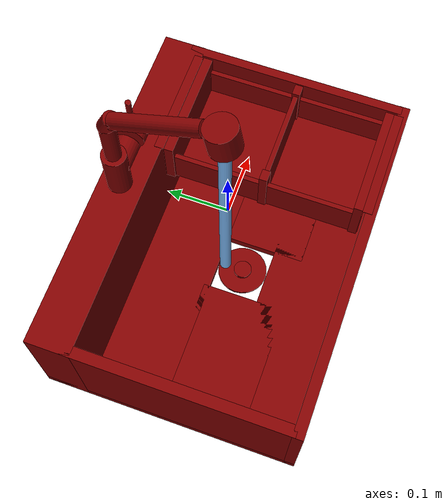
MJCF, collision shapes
<mujoco model="model">
  <compiler angle="radian"/>
  <asset>
    <mesh file="visuals/handle.obj" name="handle_vis"/>
    <mesh file="visuals/Body001.obj" name="Body001_vis"/>
    <mesh file="visuals/Funnel001.obj" name="Funnel001_vis"/>
    <mesh file="visuals/Shelf001.obj" name="Shelf001_vis"/>
    <mesh file="visuals/spout.obj" name="spout_vis"/>
    <texture file="visuals/T_BC001.png" name="Body001_material" type="2d"/>
    <material name="Body001_material" rgba="1 1 1 1.0" texture="Body001_material" shininess="0.2512328028678894" specular="0.7"/>
    <texture file="visuals/T_BC001.png" name="handle_material" type="2d"/>
    <material name="handle_material" rgba="1 1 1 1.0" texture="handle_material" shininess="0.2512328028678894" specular="0.7"/>
    <texture file="visuals/T_BC001.png" name="Funnel001_material" type="2d"/>
    <material name="Funnel001_material" rgba="1 1 1 1.0" texture="Funnel001_material" shininess="0.2512328028678894" specular="0.7"/>
    <texture file="visuals/T_BC001.png" name="Shelf001_material" type="2d"/>
    <material name="Shelf001_material" rgba="1 1 1 1.0" texture="Shelf001_material" shininess="0.2512328028678894" specular="0.7"/>
    <texture file="visuals/T_BC001.png" name="spout_material" type="2d"/>
    <material name="spout_material" rgba="1 1 1 1.0" texture="spout_material" shininess="0.2512328028678894" specular="0.71"/>
  </asset>
  <default>
    <default class="visual">
      <geom conaffinity="0" contype="0" group="1" type="mesh"/>
    </default>
    <default class="collision">
      <geom group="0" rgba="0.5 0 0 0.5"/>
    </default>
    <default class="spawn">
      <geom group="0" rgba="1 1 1 0.5" contype="0" conaffinity="0"/>
      <site group="0" rgba="1 1 1 0.5"/>
    </default>
    <default class="region">
      <geom group="1" conaffinity="0" contype="0" rgba="0 1 0 0"/>
    </default>
  </default>
  <worldbody>
    <body>
      <body name="object">
        <geom mesh="Body001_vis" type="mesh" solimp="0.998 0.998 0.001" solref="0.001 1" density="100" friction="0.95 0.3 0.1" class="visual" material="Body001_material"/>
        <geom class="collision" type="cylinder" pos="0.002426 0.190546 0.015431" size="0.020831860601902008 0.0458267480134964" quat="1.0 0.0 0.0 0.0"/>
        <geom class="collision" type="cylinder" pos="0.027035 0.190546 0.020480" size="0.020831860601902008 0.024780360981822014" quat="0.7071068286895752 -0.0 0.7071067690849304 0.0"/>
        <geom class="collision" type="box" pos="-0.000346 -0.215834 -0.138684" size="0.30083996057510376 0.009166315197944641 0.10828779637813568" quat="1.0 0.0 0.0 0.0"/>
        <geom class="collision" type="box" pos="-0.000346 0.187236 -0.138684" size="0.30083996057510376 0.03776437044143677 0.10828779637813568" quat="1.0 0.0 0.0 0.0"/>
        <geom class="collision" type="box" pos="-0.291481 -0.019527 -0.138684" size="0.009703980758786201 0.19282034039497375 0.10828779637813568" quat="1.0 0.0 0.0 0.0"/>
        <geom class="collision" type="box" pos="0.292151 -0.019527 -0.138684" size="0.007847588509321213 0.19282034039497375 0.10828779637813568" quat="1.0 0.0 0.0 0.0"/>
        <geom class="collision" type="box" pos="-0.000346 0.121445 -0.238684" size="0.30083996057510376 0.10355537384748459 0.008287759497761726" quat="1.0 0.0 0.0 0.0"/>
        <geom class="collision" type="box" pos="-0.000346 -0.148835 -0.238684" size="0.30083996057510376 0.07616467028856277 0.008287759497761726" quat="1.0 0.0 0.0 0.0"/>
        <geom class="collision" type="box" pos="-0.175362 -0.048112 -0.238684" size="0.12582388520240784 0.07616467028856277 0.008287759497761726" quat="1.0 0.0 0.0 0.0"/>
        <geom class="collision" type="box" pos="0.175696 -0.048112 -0.238684" size="0.12348379194736481 0.07616467028856277 0.008287759497761726" quat="1.0 0.0 0.0 0.0"/>
        <body name="handle">
          <joint axis="1.0 0.0 0.0" pos="0.069800 0.190336 0.020665" limited="true" name="handle_joint_hinge_0" type="hinge" range="-0.7853981633974483 0.7853981633974483" damping="1" frictionloss="1" armature=".01" stiffness="0.05"/>
          <joint axis="0.0 1.0 0.0" pos="0.069800 0.190336 0.020665" limited="true" name="handle_joint_hinge_1" type="hinge" range="0.0 0.17453292519943295" damping="1" frictionloss="1" armature=".01" stiffness="0.05"/>
          <geom mesh="handle_vis" type="mesh" solimp="0.998 0.998 0.001" solref="0.001 1" density="100" friction="0.95 0.3 0.1" class="visual" material="handle_material"/>
          <geom class="collision" type="cylinder" pos="0.072344 0.190546 0.020648" size="0.02436080016195774 0.011946998536586761" quat="0.7071068286895752 -0.0 0.7071067690849304 0.0"/>
          <geom class="collision" type="cylinder" pos="0.073643 0.190425 0.070952" size="0.00486146192997694 0.03468066081404686" quat="1.0 0.0 0.0 0.0"/>
        </body>
        <body name="Funnel001">
          <joint axis="0.0 0.0 1.0" pos="0.000146 -0.028039 -0.232142" limited="true" name="Funnel001_joint" range="0.0 0.1" type="slide" damping="1" frictionloss="1" armature=".01" stiffness="0.05"/>
          <geom mesh="Funnel001_vis" type="mesh" solimp="0.998 0.998 0.001" solref="0.001 1" density="100" friction="0.95 0.3 0.1" class="visual" material="Funnel001_material"/>
          <geom class="collision" type="cylinder" pos="0.000288 -0.027889 -0.233877" size="0.043843142688274384 0.0017247076611965895" quat="1.0 0.0 0.0 0.0"/>
          <geom class="collision" type="cylinder" pos="0.000210 -0.028260 -0.229330" size="0.015967193990945816 0.0028173860628157854" quat="1.0 0.0 0.0 0.0"/>
        </body>
        <body name="Shelf001">
          <joint axis="0.0 0.0 1.0" pos="0.154435 -0.030295 -0.080426" limited="true" name="Shelf001_joint" range="0.0 0.1" type="slide" damping="1" frictionloss="1" armature=".01" stiffness="0.05"/>
          <geom mesh="Shelf001_vis" type="mesh" solimp="0.998 0.998 0.001" solref="0.001 1" density="100" friction="0.95 0.3 0.1" class="visual" material="Shelf001_material"/>
          <geom class="collision" type="box" pos="0.273166 -0.028750 -0.085936" size="0.004088487941771746 0.17451916635036469 0.03176761046051979" quat="1.0 0.0 0.0 0.0"/>
          <geom class="collision" type="box" pos="0.092517 -0.028750 -0.085936" size="0.004088487941771746 0.17451916635036469 0.03176761046051979" quat="1.0 0.0 0.0 0.0"/>
          <geom class="collision" type="box" pos="0.182486 -0.028750 -0.111286" size="0.08870105445384979 0.17451916635036469 0.004088497254997492" quat="1.0 0.0 0.0 0.0"/>
          <geom class="collision" type="box" pos="0.187585 -0.030764 -0.077110" size="0.09570297598838806 0.004088507499545813 0.04059391841292381" quat="1.0 0.0 0.0 0.0"/>
          <geom class="collision" type="box" pos="0.182510 -0.194551 -0.072936" size="0.09712352603673935 0.007516270503401756 0.04476821795105934" quat="1.0 0.0 0.0 0.0"/>
          <geom class="collision" type="box" pos="0.272284 -0.030730 -0.073927" size="0.009886195883154869 0.007012831978499889 0.04377679526805878" quat="1.0 0.0 0.0 0.0"/>
          <geom class="collision" type="box" pos="0.095064 -0.030730 -0.073927" size="0.009886195883154869 0.007012831978499889 0.04377679526805878" quat="1.0 0.0 0.0 0.0"/>
          <geom class="collision" type="box" pos="0.181909 0.137070 -0.072936" size="0.09772445261478424 0.008141646161675453 0.04476821795105934" quat="1.0 0.0 0.0 0.0"/>
          <geom class="collision" type="box" pos="0.181909 -0.209895 -0.028915" size="0.09772445261478424 0.008141646161675453 0.00032241115695796907" quat="1.0 0.0 0.0 0.0"/>
          <geom class="collision" type="box" pos="0.181909 0.154093 -0.028915" size="0.09772445261478424 0.008141646161675453 0.00032241115695796907" quat="1.0 0.0 0.0 0.0"/>
        </body>
        <body name="spout">
          <joint axis="0.0 0.0 1.0" pos="0.002550 0.190488 0.141073" limited="true" name="spout_joint" range="-0.7853981633974483 0.7853981633974483" type="hinge" damping="1" frictionloss="1" armature=".01" stiffness="0.05"/>
          <site type="cylinder" rgba="0.5 0.75 1 1" size="0.010260341688990593 0.21937322616577148" pos="0.002859 0.005823 -0.017777" name="water"/>
          <geom mesh="spout_vis" type="mesh" solimp="0.998 0.998 0.001" solref="0.001 1" density="100" friction="0.95 0.3 0.1" class="visual" material="spout_material"/>
          <geom class="collision" type="cylinder" pos="0.002426 0.190546 0.105313" size="0.013487700372934341 0.04282769560813904" quat="1.0 0.0 0.0 0.0"/>
          <geom class="collision" type="cylinder" pos="0.002426 0.108657 0.195385" size="0.013487700372934341 0.07807393372058868" quat="0.8297640085220337 0.5581144094467163 0.0 0.0"/>
          <geom class="collision" type="cylinder" pos="0.002426 0.186199 0.158192" size="0.013487700372934341 0.015277374535799026" quat="0.97535640001297 0.22063519060611725 0.0 0.0"/>
          <geom class="collision" type="cylinder" pos="0.002426 0.008599 0.218085" size="0.02633121982216835 0.02346637286245823" quat="0.9967784881591797 -0.08020363748073578 -0.0 0.0"/>
        </body>
        <geom class="region" name="reg_main" type="box" pos="0.0 0.0 -0.139094" size="0.3 0.225 0.108698"/>
        <geom class="region" name="reg_basin" type="box" pos="-0.09842299999999998 -0.028421500000000002 -0.129475" size="0.18 0.17354750000000002 0.09714"/>
      </body>
    </body>
  </worldbody>
  <actuator>
    <motor name="handle_joint_hinge_0_actuator" joint="handle_joint_hinge_0" gear="10"/>
    <motor name="handle_joint_hinge_1_actuator" joint="handle_joint_hinge_1" gear="10"/>
    <motor name="Funnel001_joint_actuator" joint="Funnel001_joint" gear="10"/>
    <motor name="Shelf001_joint_actuator" joint="Shelf001_joint" gear="50"/>
    <motor name="spout_joint_actuator" joint="spout_joint" gear="10"/>
  </actuator>
</mujoco>
